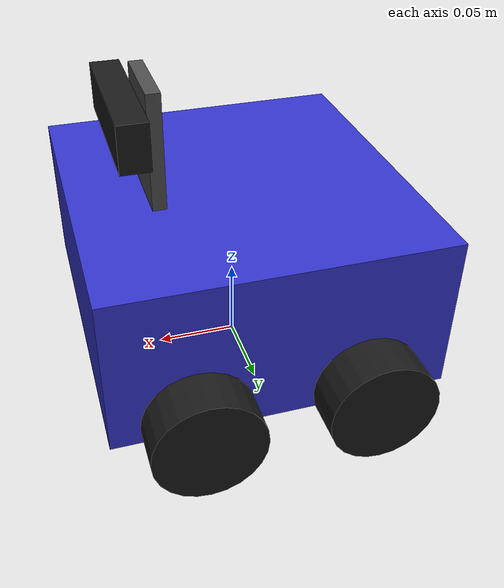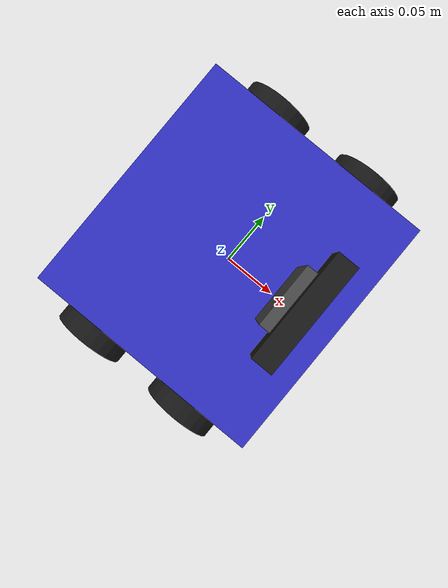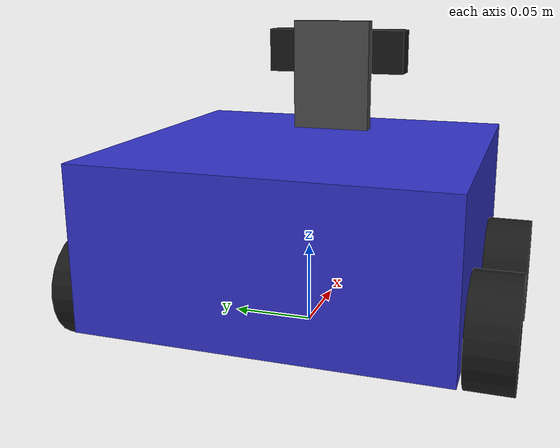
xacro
<?xml version="1.0"?>
<robot xmlns:xacro="http://www.ros.org/wiki/xacro" name="autonomous_rover">

  <!-- Base Robot-->
  <xacro:include filename="$(find autonomous_rover)/description/base_robot.xacro"/>

  <!--Sensors-->
  <xacro:include filename="$(find autonomous_rover)/description/oak_camera.xacro"/>
  <xacro:include filename="$(find autonomous_rover)/description/imu.xacro"/>
</robot>

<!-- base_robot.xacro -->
<robot xmlns:xacro="http://www.ros.org/wiki/xacro" >

  <!-- ROS2 Control Plugins-->
  <xacro:include filename="$(find autonomous_rover)/description/ros2_control.xacro"/>

  <!-- Base footprint - ground reference -->
   <link name="base_footprint"/>

  <joint name="base_joint" type="fixed">
    <parent link="base_footprint"/>
    <child link="base_link"/>
    <origin xyz="0 0 0.06825" rpy="0 0 0"/>
  </joint>

  <link name="base_link">
    <visual>
      <origin xyz="0 0 0.0" rpy="0 0 0"/>
      <geometry>
        <box size="0.2 0.211 0.0965"/>
      </geometry>
      <material name="blue">
        <color rgba="0.2 0.2 0.8 1.0"/>
      </material>
    </visual>

    <collision>
      <origin xyz="0 0 0" rpy="0 0 0"/>
      <geometry>
        <box size="0.2 0.15 0.045"/>
      </geometry>
    </collision>

    <inertial>
      <origin xyz="0 0 0" rpy="0 0 0"/>
      <mass value="5.0"/>
      <inertia ixx="0.0306" iyy="0.0881" izz="0.1151"
               ixy="0" ixz="0" iyz="0"/>
    </inertial>
  </link>

  <!-- Front Left Wheel -->
  <joint name="front_left_wheel_joint" type="continuous">
    <parent link="base_link"/>
    <child link="front_left_wheel"/>
    <origin xyz="0.05 0.119 -0.03825" rpy="0 0 0"/>
    <axis xyz="0 1 0"/>
  </joint>

  <link name="front_left_wheel">
    <visual>
      <origin xyz="0 0 0" rpy="1.5708 0 0"/>
      <geometry>
        <cylinder radius="0.0325" length="0.027"/>
      </geometry>
      <material name="wheel_color">
        <color rgba="0.1 0.1 0.1 1.0"/>
      </material>
    </visual>

    <collision>
      <origin xyz="0 0 0" rpy="1.5708 0 0"/>
      <geometry>
        <cylinder radius="0.0325" length="0.027"/>
      </geometry>
    </collision>

    <inertial>
      <origin xyz="0 0 0" rpy="1.5708 0 0"/>
      <mass value="0.01"/>
      <inertia ixx="0.000001" iyy="0.000001" izz="0.000001"
               ixy="0" ixz="0" iyz="0"/>
    </inertial>
  </link>

  <!-- Front Right Wheel -->
  <joint name="front_right_wheel_joint" type="continuous">
    <parent link="base_link"/>
    <child link="front_right_wheel"/>
    <origin xyz="0.05 -0.119 -0.03825" rpy="0 0 0"/>
    <axis xyz="0 1 0"/>
  </joint>

  <link name="front_right_wheel">
    <visual>
      <origin xyz="0 0 0" rpy="1.5708 0 0"/>
      <geometry>
        <cylinder radius="0.0325" length="0.027"/>
      </geometry>
      <material name="wheel_color">
        <color rgba="0.1 0.1 0.1 1.0"/>
      </material>
    </visual>

    <collision>
      <origin xyz="0 0 0" rpy="1.5708 0 0"/>
      <geometry>
        <cylinder radius="0.0325" length="0.027"/>
      </geometry>
    </collision>

    <inertial>
      <origin xyz="0 0 0" rpy="1.5708 0 0"/>
      <mass value="0.01"/>
      <inertia ixx="0.000001" iyy="0.000001" izz="0.000001"
               ixy="0" ixz="0" iyz="0"/>
    </inertial>
  </link>

  <!-- Back Left Wheel -->
  <joint name="back_left_wheel_joint" type="continuous">
    <parent link="base_link"/>
    <child link="back_left_wheel"/>
    <origin xyz="-0.05 0.119 -0.03825" rpy="0 0 0"/>
    <axis xyz="0 1 0"/>
  </joint>

  <link name="back_left_wheel">
    <visual>
      <origin xyz="0 0 0" rpy="1.5708 0 0"/>
      <geometry>
        <cylinder radius="0.0325" length="0.027"/>
      </geometry>
      <material name="wheel_color">
        <color rgba="0.1 0.1 0.1 1.0"/>
      </material>
    </visual>

    <collision>
      <origin xyz="0 0 0" rpy="1.5708 0 0"/>
      <geometry>
        <cylinder radius="0.0325" length="0.027"/>
      </geometry>
    </collision>

    <inertial>
      <origin xyz="0 0 0" rpy="1.5708 0 0"/>
      <mass value="0.01"/>
      <inertia ixx="0.000001" iyy="0.000001" izz="0.000001"
               ixy="0" ixz="0" iyz="0"/>
    </inertial>
  </link>

  <!-- Back Right Wheel -->
  <joint name="back_right_wheel_joint" type="continuous">
    <parent link="base_link"/>
    <child link="back_right_wheel"/>
    <origin xyz="-0.05 -0.119 -0.03825" rpy="0 0 0"/>
    <axis xyz="0 1 0"/>
  </joint>

  <link name="back_right_wheel">
    <visual>
      <origin xyz="0 0 0" rpy="1.5708 0 0"/>
      <geometry>
        <cylinder radius="0.0325" length="0.027"/>
      </geometry>
      <material name="wheel_color">
        <color rgba="0.1 0.1 0.1 1.0"/>
      </material>
    </visual>

    <collision>
      <origin xyz="0 0 0" rpy="1.5708 0 0"/>
      <geometry>
        <cylinder radius="0.0325" length="0.027"/>
      </geometry>
    </collision>

    <inertial>
      <origin xyz="0 0 0" rpy="1.5708 0 0"/>
      <mass value="0.01"/>
      <inertia ixx="0.000001" iyy="0.000001" izz="0.000001"
               ixy="0" ixz="0" iyz="0"/>
    </inertial>
  </link>

</robot>

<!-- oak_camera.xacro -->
<robot xmlns:xacro="http://www.ros.org/wiki/xacro">

  <!-- Camera Mount -->
  <joint name="mount_joint" type="fixed">
    <parent link="base_link"/>
    <child link="mount_link"/>
    <origin xyz="0.05 0.0 0.04825" rpy="0 0 0"/>
  </joint>

  <link name="mount_link">
    <visual>
      <origin xyz="0 0 0.035" rpy="0 0 0"/>
      <geometry>
        <box size="0.0085 0.050 0.070"/>
      </geometry>
      <material name="mount_material">
        <color rgba="0.3 0.3 0.3 1.0"/>
      </material>
    </visual>

    <collision>
      <origin xyz="0 0 0.020" rpy="0 0 0"/>
      <geometry>
        <box size="0.020 0.045 0.040"/>
      </geometry>
    </collision>

    <inertial>
      <origin xyz="0 0 0.020" rpy="0 0 0"/>
      <mass value="0.010"/>
      <inertia ixx="0.000001" iyy="0.000001" izz="0.000001"
               ixy="0" ixz="0" iyz="0"/>
    </inertial>
  </link>

  <!-- OAK-D Lite Camera Base -->
  <joint name="camera_joint" type="fixed">
    <parent link="mount_link"/>
    <child link="camera_link"/>
    <origin xyz="0.015 0.0 0.050" rpy="0 0 0"/>
  </joint>

  <link name="camera_link">
    <visual>
      <origin xyz="0 0 0" rpy="0 0 0"/>
      <geometry>
        <!-- OAK-D Lite Dimensions -->
        <box size="0.0175 0.091 0.028"/>
      </geometry>
      <material name="camera_material">
        <color rgba="0.1 0.1 0.1 1.0"/>
      </material>
    </visual>

    <collision>
      <origin xyz="0 0 0" rpy="0 0 0"/>
      <geometry>
        <box size="0.0175 0.091 0.028"/>
      </geometry>
    </collision>

    <inertial>
      <origin xyz="0 0 0" rpy="0 0 0"/>
      <mass value="0.061"/>
      <inertia ixx="0.000008" iyy="0.000015" izz="0.000015"
               ixy="0" ixz="0" iyz="0"/>
    </inertial>
  </link>

  <!-- RGB Camera (Center) -->
  <joint name="camera_rgb_joint" type="fixed">
    <parent link="camera_link"/>
    <child link="oak_rgb_camera_frame"/>
    <origin xyz="0.00875 0.0 0.0" rpy="0 0 0"/>
  </joint>

  <link name="oak_rgb_camera_frame"/>

  <joint name="camera_rgb_optical_joint" type="fixed">
    <parent link="oak_rgb_camera_frame"/>
    <child link="oak_rgb_camera_optical_frame"/>
    <!-- Rotate to optical frame convention (z forward, x right, y down) -->
    <origin xyz="0 0 0" rpy="${-pi/2} 0 ${-pi/2}"/>
  </joint>

  <link name="oak_rgb_camera_optical_frame"/>

  <!-- Left Camera -->
  <joint name="camera_left_joint" type="fixed">
    <parent link="camera_link"/>
    <child link="oak_left_camera_frame"/>
    <!-- 37.5mm to the left from center -->
    <origin xyz="0.00875 0.0375 0.0" rpy="0 0 0"/>
  </joint>

  <link name="oak_left_camera_frame"/>

  <joint name="camera_left_optical_joint" type="fixed">
    <parent link="oak_left_camera_frame"/>
    <child link="oak_left_camera_optical_frame"/>
    <origin xyz="0 0 0" rpy="${-pi/2} 0 ${-pi/2}"/>
  </joint>

  <link name="oak_left_camera_optical_frame"/>

  <!-- Right Camera -->
  <joint name="camera_right_joint" type="fixed">
    <parent link="camera_link"/>
    <child link="oak_right_camera_frame"/>
    <!-- 37.5mm to the right from center -->
    <origin xyz="0.00875 -0.0375 0.0" rpy="0 0 0"/>
  </joint>

  <link name="oak_right_camera_frame"/>

  <joint name="camera_right_optical_joint" type="fixed">
    <parent link="oak_right_camera_frame"/>
    <child link="oak_right_camera_optical_frame"/>
    <origin xyz="0 0 0" rpy="${-pi/2} 0 ${-pi/2}"/>
  </joint>

  <link name="oak_right_camera_optical_frame"/>

  <!-- IMU -->
  <joint name="camera_imu_joint" type="fixed">
    <parent link="camera_link"/>
    <child link="oak_imu_frame"/>
    <origin xyz="0.0 0.0 0.0" rpy="0 ${pi/2} 0"/>
  </joint>

  <link name="oak_imu_frame"/>

</robot>

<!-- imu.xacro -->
<robot xmlns:xacro="http://www.ros.org/wiki/xacro">

    <joint name="imu_joint" type="fixed">
        <parent link="base_link" />
        <child link="imu_link" />
        <origin xyz="0 0 0.08325" rpy="0 0 0"/>
   </joint>

    <link name="imu_link"/>

</robot>
